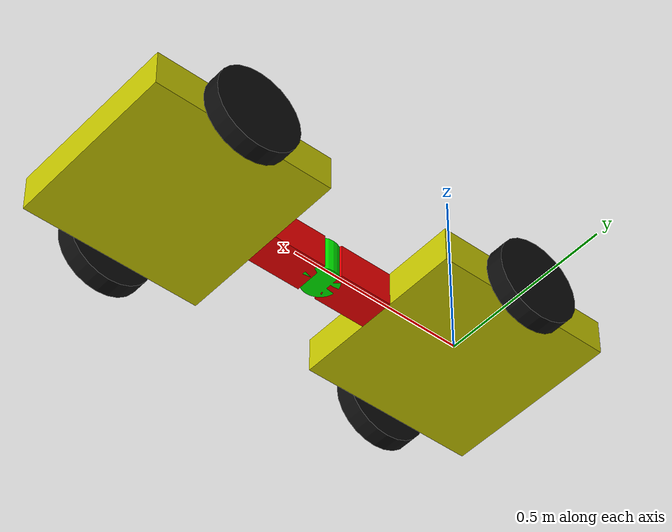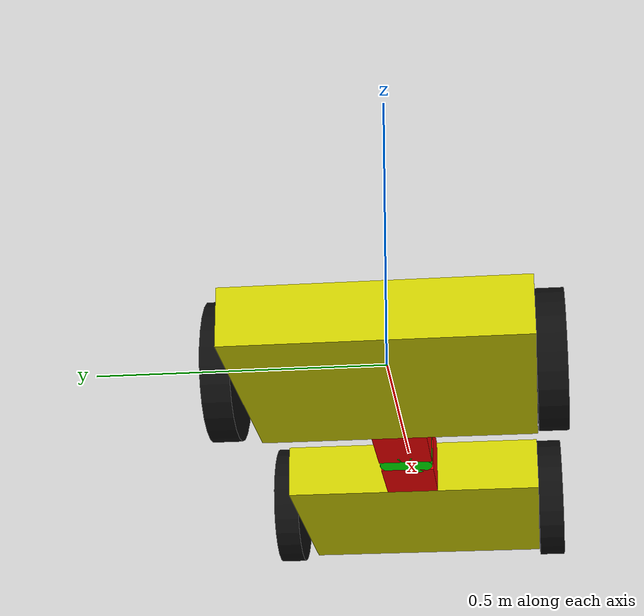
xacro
<?xml version="1.0"?>

<robot xmlns:xacro="http://www.ros.org/wiki/xacro" name="dm3">

<xacro:property name="robotname" value="dm3" />

<xacro:property name="pi_2" value="1.570795" />

<!-- links names -->
<xacro:property name="front_chasis_link" value="base_link" />
<xacro:property name="back_chasis_link" value="back_chasis_link" />
<xacro:property name="f_l_wheel_link" value="f_l_wheel" />
<xacro:property name="f_r_wheel_link" value="f_r_wheel" />
<xacro:property name="b_l_wheel_link" value="b_l_wheel" />
<xacro:property name="b_r_wheel_link" value="b_r_wheel" />
<xacro:property name="front_chasis_arm_link" value="front_chasis_arm" />
<xacro:property name="back_chasis_arm_link" value="back_chasis_arm" />
<xacro:property name="articulation" value="articulation" />

<!-- links dimentions -->
<xacro:property name="chasis_width" value=".5" />
<xacro:property name="chasis_length" value=".5" />
<xacro:property name="chasis_height" value=".1" />
<xacro:property name="arm_width" value=".15" />
<xacro:property name="arm_length" value=".1" />
<xacro:property name="arm_height" value=".1" />
<xacro:property name="wheel_diam" value=".24" />
<xacro:property name="wheel_width" value=".05" />
<xacro:property name="art_diam" value=".1" />
<xacro:property name="art_width" value=".1" />

<!-- materiasl definition-->
<xacro:macro name="green_material">
  <material name="green">
    <color rgba="0 1 0 1"/>
  </material>
</xacro:macro>

<xacro:macro name="red_material">
  <material name="red">
    <color rgba="1 0 0 1"/>
  </material>
</xacro:macro>

<xacro:macro name="black_material">
  <material name="black">
    <color rgba="0.05 0.05 0.05 1"/>
  </material>
</xacro:macro>

<xacro:macro name="yellow_material">
  <material name="yellow">
    <color rgba="0.8 0.8 0 1"/>
  </material>
</xacro:macro>

<!-- links macros -->
<xacro:macro name="make_chasis" params="chasis_name">
  <link name="${chasis_name}">
    <visual>
      <origin xyz="0 0 0" rpy="0 0 0" />
      <geometry>
          <box size="${chasis_width} ${chasis_length} ${chasis_height}"/>
      </geometry>
      <xacro:yellow_material />
    </visual>
    <collision>
      <origin xyz="0 0 ${chasis_height/2}" rpy="0 0 0"/>
      <geometry>
        <box size="${chasis_width} ${chasis_length} ${chasis_height}"/>
      </geometry>
    </collision>
    <inertial>
      <origin xyz="0 0 1" rpy="0 0 0"/>
      <mass value="5"/>
      <inertia
        ixx="1.0" ixy="0.0" ixz="0.0"
        iyy="1.0" iyz="0.0"
        izz="1.0"/>
    </inertial>
  </link>
</xacro:macro>

<xacro:macro name="make_arm" params="arm_name">
  <link name="${arm_name}">
    <visual>
      <origin xyz="0 0 0" rpy="0 0 0" />
      <geometry>
          <box size="${arm_width} ${arm_length} ${arm_height}"/>
      </geometry>
      <xacro:red_material />
    </visual>
    <collision>
      <origin xyz="0 0 0" rpy="0 0 0"/>
      <geometry>
          <box size="${arm_width} ${arm_length} ${arm_height}"/>
      </geometry>
    </collision>
    <inertial>
      <origin xyz="0 0 1" rpy="0 0 0"/>
      <mass value="1"/>
      <inertia
        ixx="1.0" ixy="0.0" ixz="0.0"
        iyy="1.0" iyz="0.0"
        izz="1.0"/>
    </inertial>
  </link>
</xacro:macro>

<xacro:macro name="make_wheel" params="wheel_name">
  <link name="${wheel_name}">
    <visual>
      <origin xyz="0 0 0" rpy="1.570795 0 0" />
      <geometry>
        <cylinder length="${wheel_width}" radius="${wheel_diam/2}" />
      </geometry>
      <xacro:black_material />
    </visual>
    <collision>
      <origin xyz="0 0 0" rpy="1.570795 0 0"/>
      <geometry>
        <cylinder length="${wheel_width}" radius="${wheel_diam/2}" />
      </geometry>
    </collision>
    <inertial>
      <origin xyz="0 0 1" rpy="0 0 0"/>
      <mass value="10"/>
      <inertia
        ixx="1.0" ixy="0.0" ixz="0.0"
        iyy="1.0" iyz="0.0"
        izz="1.0"/>
    </inertial>
  </link>
</xacro:macro>

<!-- without colision -->
<xacro:macro name="make_art" params="art_name">
  <link name="${art_name}">
    <visual>
      <origin xyz="0 0 0" rpy="0 0 0" />
      <geometry>
          <cylinder length="${art_width}" radius="${art_diam/2}" />
      </geometry>
      <xacro:green_material />
    </visual>
    <inertial>
      <origin xyz="0 0 1" rpy="0 0 0"/>
      <mass value="0.01"/>
      <inertia
        ixx="1.0" ixy="0.0" ixz="0.0"
        iyy="1.0" iyz="0.0"
        izz="1.0"/>
    </inertial>
  </link>
</xacro:macro>

<!-- joints macros -->
<xacro:macro name="chasis_wheel_joint" params="chasis_link wheel_link sign">
  <joint name="${wheel_link}_joint" type="continuous">
    <parent link="${chasis_link}"/>
    <child link="${wheel_link}"/>
    <origin xyz="0 ${sign*(chasis_width + wheel_width)/2} 0" rpy="0 0 0" />
    <axis xyz="0 1 0" rpy="0 0 0" />
  </joint>
</xacro:macro>

<xacro:macro name="chasis_arm_joint" params="parent child">
  <joint name="joint_${parent}_${child}" type="fixed">
    <parent link="${parent}"/>
    <child link="${child}"/>
    <origin xyz="${(chasis_width + arm_width)/2} 0 0" rpy="0 0 0" />
    <axis xyz="0 1 0" rpy="0 0 0" />
  </joint>
</xacro:macro>

<xacro:macro name="arm_art_joint" params="parent child type">
  <joint name="joint_${parent}_${child}" type="${type}">
    <parent link="${parent}"/>
    <child link="${child}"/>
    <origin xyz="${art_diam} 0 0" rpy="0 0 0" />
    <axis xyz="0 0 1" rpy="0 0 0" />
    <limit lower="-0.7" upper="0.7" effort="100" velocity="100" />
  </joint>
</xacro:macro>

  <!-- chasis links -->
  <xacro:make_chasis chasis_name="${front_chasis_link}"/>
  <xacro:make_chasis chasis_name="${back_chasis_link}"/>

  <!-- wheels links -->
  <xacro:make_wheel wheel_name="${f_r_wheel_link}"/>
  <xacro:make_wheel wheel_name="${f_l_wheel_link}"/>
  <xacro:make_wheel wheel_name="${b_l_wheel_link}"/>
  <xacro:make_wheel wheel_name="${b_r_wheel_link}"/>

  <!-- arms links -->
  <xacro:make_arm arm_name="${front_chasis_arm_link}"/>
  <xacro:make_arm arm_name="${back_chasis_arm_link}"/>

  <!-- articulation -->
  <xacro:make_art art_name="${articulation}"/>

  <!-- joint chasis and wheel -->
  <xacro:chasis_wheel_joint chasis_link="${front_chasis_link}" wheel_link="${f_l_wheel_link}" sign="1"/>
  <xacro:chasis_wheel_joint chasis_link="${front_chasis_link}" wheel_link="${f_r_wheel_link}" sign="-1"/>
  <xacro:chasis_wheel_joint chasis_link="${back_chasis_link}" wheel_link="${b_l_wheel_link}" sign="1"/>
  <xacro:chasis_wheel_joint chasis_link="${back_chasis_link}" wheel_link="${b_r_wheel_link}" sign="-1"/>

  <!-- joint articulation and arm -->
  <xacro:arm_art_joint parent="${front_chasis_arm_link}" child="${articulation}" type="revolute"/>
  <xacro:arm_art_joint parent="${articulation}" child="${back_chasis_arm_link}" type="fixed"/>

  <!-- joint chasis and arm -->
  <xacro:chasis_arm_joint parent="${front_chasis_link}" child="${front_chasis_arm_link}"/>
  <xacro:chasis_arm_joint parent="${back_chasis_arm_link}" child="${back_chasis_link}"/>

  <!-- Transmission is important to link the joints and the controller -->
  <!-- chasis: {f, b} -->
  <!-- wheel: {l, r} -->
  <xacro:macro name="make_transmossion" params="chasis wheel">
    <transmission name="${chasis}_${wheel}_wheel_joint_trans">
      <type>transmission_interface/SimpleTransmission</type>
      <joint name="${chasis}_${wheel}_wheel_joint" />
      <actuator name="${chasis}_${wheel}_wheel_joint_motor">
        <hardwareInterface>EffortJointInterface</hardwareInterface>
        <mechanicalReduction>1</mechanicalReduction>
      </actuator>
    </transmission>
  </xacro:macro>
</robot>
